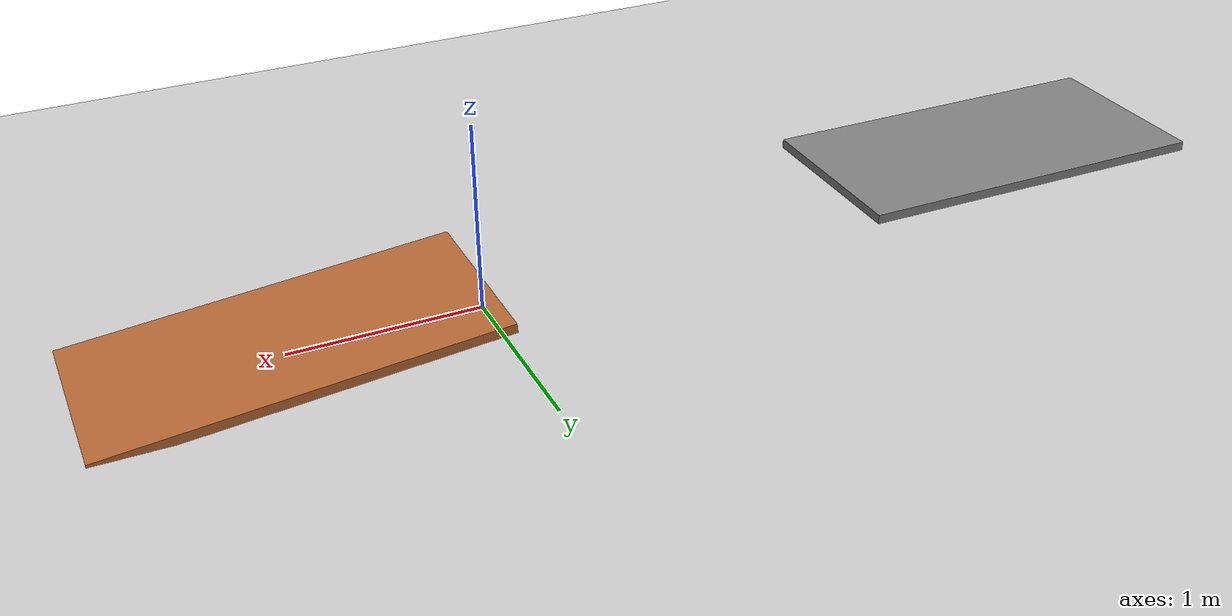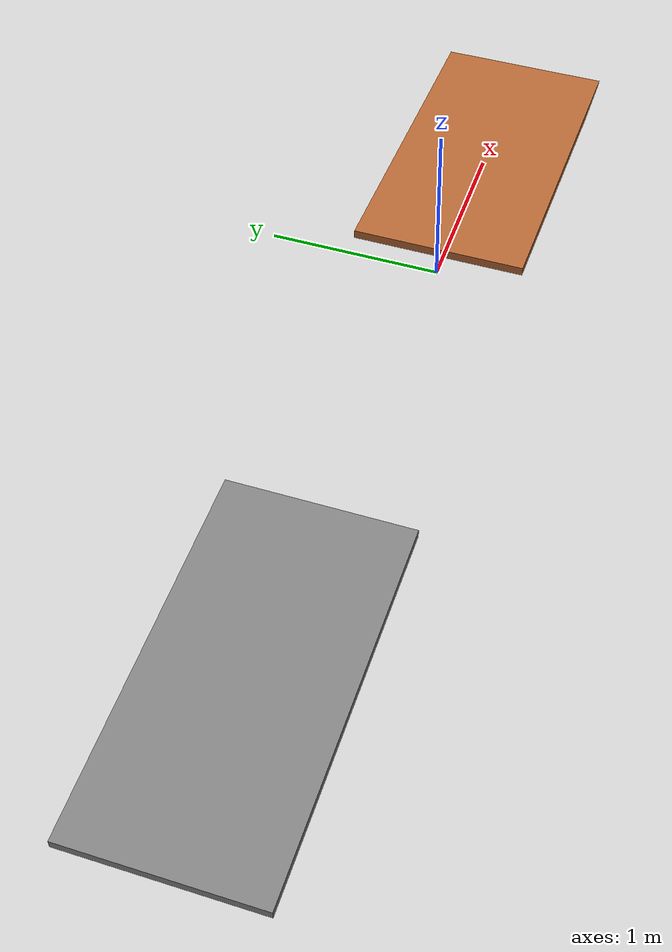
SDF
<sdf version="1.7">
  <world name="default">
    <!-- Ground and sun -->
    <include>
      <uri>model://ground_plane</uri>
    </include>
    <include>
      <uri>model://sun</uri>
    </include>

    <!-- Ramp -->
    <model name="ramp">
      <!-- x y z roll pitch yaw -->
      <pose>0.996 0 0.072 0 0.0873 0</pose>
      <static>true</static>
      <link name="link">
        <collision name="collision">
          <geometry>
            <box>
              <size>2.0 1.0 0.05</size>
            </box>
          </geometry>
        </collision>
        <visual name="visual">
          <geometry>
            <box>
              <size>2.0 1.0 0.05</size>
            </box>
          </geometry>
          <material>
            <ambient>0.7 0.4 0.2 1</ambient>
            <diffuse>0.7 0.4 0.2 1</diffuse>
          </material>
        </visual>
      </link>
    </model>
    <!-- Alleyway connected to ramp -->
<model name="alleyway">
  <pose>-2.992 0 0.271 0 0 0</pose>
  <static>true</static>
  <link name="link">
    <collision name="collision">
      <geometry>
        <box>
          <size>2.0 1.0 0.05</size>
        </box>
      </geometry>
    </collision>
    <visual name="visual">
      <geometry>
        <box>
          <size>2.0 1.0 0.05</size>
        </box>
      </geometry>
      <material>
        <ambient>0.5 0.5 0.5 1</ambient>
        <diffuse>0.5 0.5 0.5 1</diffuse>
      </material>
    </visual>
  </link>
</model>

  </world>
</sdf>
